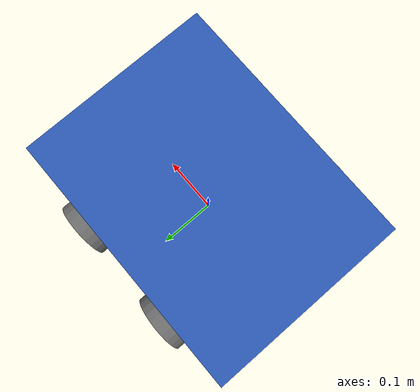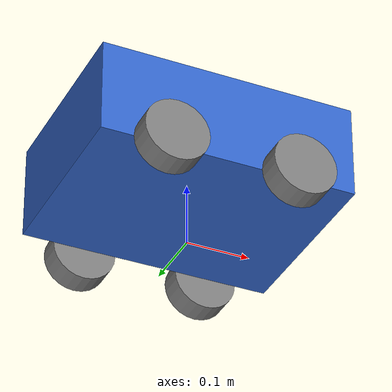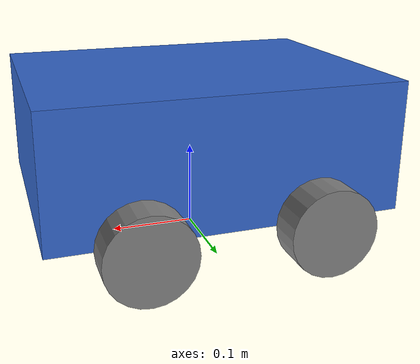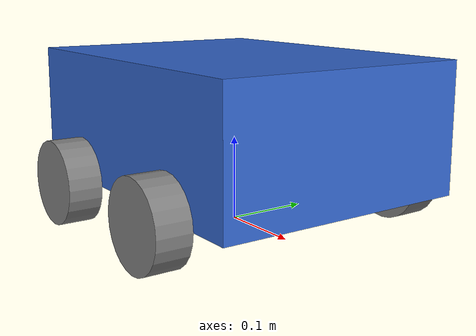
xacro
<?xml version="1.0"?>
<robot name="4wd_robot" xmlns:xacro="http://www.ros.org/wiki/xacro">

    <xacro:property name="base_width" value="0.3"/>
    <xacro:property name="base_length" value="0.4"/>
    <xacro:property name="base_height" value="0.15"/>
    <xacro:property name="wheel_radius" value="0.05"/>
    <xacro:property name="wheel_width" value="0.04"/>

    <link name="base_footprint"/>

    <link name="base_link">
        <visual>
            <origin xyz="0 0 ${base_height/2}" rpy="0 0 0"/>
            <geometry>
                <box size="${base_length} ${base_width} ${base_height}"/>
            </geometry>
            <material name="blue">
                <color rgba="0.2 0.4 0.8 1"/>
            </material>
        </visual>
        <collision>
            <origin xyz="0 0 ${base_height/2}" rpy="0 0 0"/>
            <geometry>
                <box size="${base_length - 0.05} ${base_width} ${base_height - 0.01}"/>
            </geometry>
        </collision>
        <inertial>
            <origin xyz="0 0 ${base_height/2}" rpy="0 0 0"/>
            <mass value="5.0"/>
            <inertia ixx="0.1" ixy="0.0" ixz="0.0" iyy="0.1" iyz="0.0" izz="0.1"/>
        </inertial>
    </link>

    <xacro:macro name="wheel_link" params="prefix">
        <link name="${prefix}_wheel_link">
            <visual>
                <origin xyz="0 0 0" rpy="${pi/2} 0 0"/>
                <geometry>
                    <cylinder radius="${wheel_radius}" length="${wheel_width}"/>
                </geometry>
                <material name="gray">
                    <color rgba="0.5 0.5 0.5 1"/>
                </material>
            </visual>
            <collision>
                <origin xyz="0 0 0" rpy="${pi/2} 0 0"/>
                <geometry>
                    <cylinder radius="${wheel_radius}" length="${wheel_width}"/>
                </geometry>
            </collision>
            <inertial>
                <mass value="0.5"/>
                <inertia ixx="0.001" ixy="0.0" ixz="0.0" iyy="0.001" iyz="0.0" izz="0.001"/>
            </inertial>
        </link>
    </xacro:macro>

    <xacro:wheel_link prefix="front_left"/>
    <xacro:wheel_link prefix="front_right"/>
    <xacro:wheel_link prefix="back_left"/>
    <xacro:wheel_link prefix="back_right"/>

    <joint name="base_joint" type="fixed">
        <parent link="base_footprint"/>
        <child link="base_link"/>
        <origin xyz="0 0 ${wheel_radius}" rpy="0 0 0"/>
    </joint>

    <xacro:macro name="wheel_joint" params="prefix x_pos y_pos">
        <joint name="${prefix}_wheel_joint" type="continuous">
            <parent link="base_link"/>
            <child link="${prefix}_wheel_link"/>
            <origin xyz="${x_pos} ${y_pos} 0" rpy="0 0 0"/>
            <axis xyz="0 1 0"/>
        </joint>
    </xacro:macro>

    <xacro:wheel_joint prefix="front_left" x_pos="${base_length/4}" y_pos="${base_width/2 + wheel_width/2}"/>
    <xacro:wheel_joint prefix="front_right" x_pos="${base_length/4}" y_pos="-${base_width/2 + wheel_width/2}"/>
    <xacro:wheel_joint prefix="back_left" x_pos="-${base_length/4}" y_pos="${base_width/2 + wheel_width/2}"/>
    <xacro:wheel_joint prefix="back_right" x_pos="-${base_length/4}" y_pos="-${base_width/2 + wheel_width/2}"/>

</robot>
